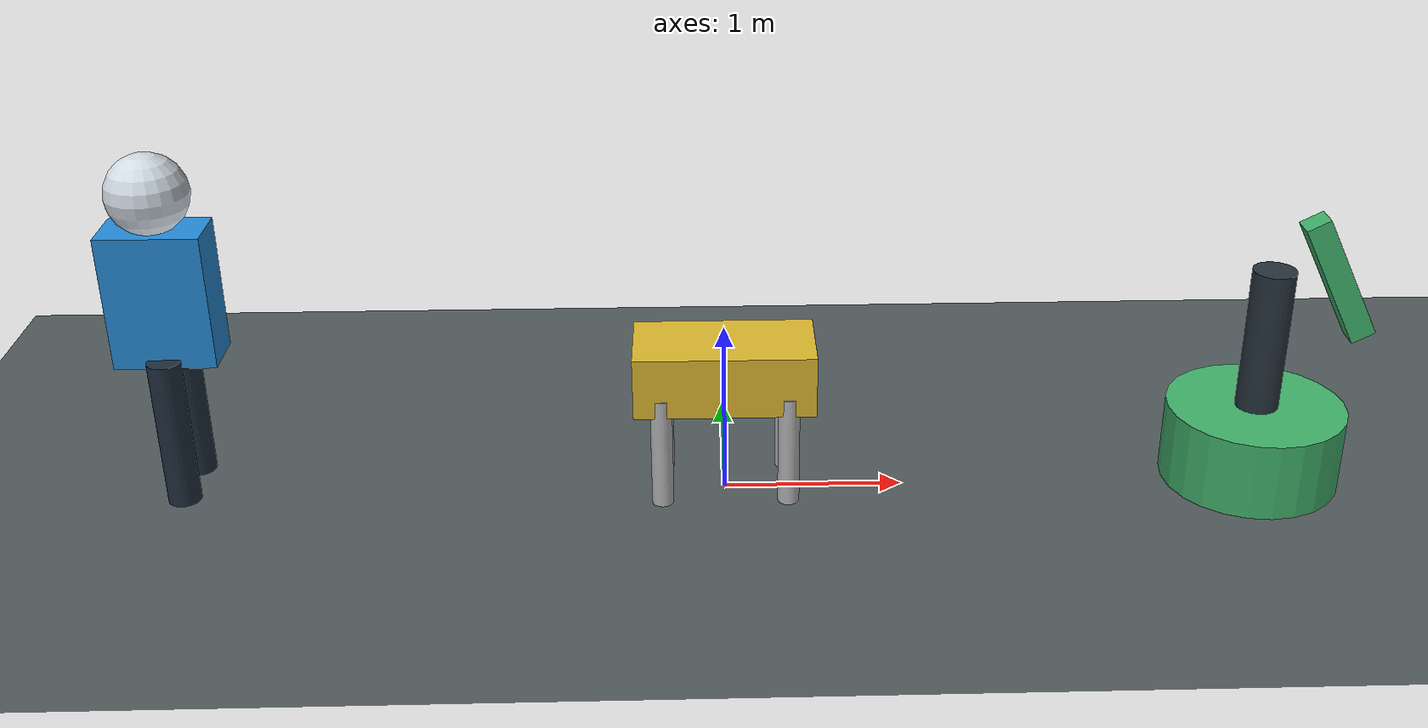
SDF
<?xml version="1.0"?>
<sdf version="1.10">
  <world name="ump_conformance">
    <plugin filename="gz-sim-physics-system" name="gz::sim::systems::Physics"/>
    <plugin filename="gz-sim-user-commands-system" name="gz::sim::systems::UserCommands"/>
    <plugin filename="gz-sim-scene-broadcaster-system" name="gz::sim::systems::SceneBroadcaster"/>

    <gravity>0 0 -9.81</gravity>
    <scene>
      <ambient>0.7 0.7 0.7 1</ambient>
      <background>0.12 0.14 0.16 1</background>
    </scene>

    <light name="sun" type="directional">
      <cast_shadows>true</cast_shadows>
      <pose>0 0 10 0 0 0</pose>
      <diffuse>0.9 0.9 0.9 1</diffuse>
      <specular>0.2 0.2 0.2 1</specular>
      <direction>-0.4 0.2 -1</direction>
    </light>

    <model name="ground">
      <static>true</static>
      <link name="ground_link">
        <collision name="collision">
          <geometry><plane><normal>0 0 1</normal><size>20 20</size></plane></geometry>
        </collision>
        <visual name="visual">
          <geometry><plane><normal>0 0 1</normal><size>20 20</size></plane></geometry>
          <material><diffuse>0.32 0.35 0.36 1</diffuse></material>
        </visual>
      </link>
    </model>

    <model name="robot_humanoid_proxy">
      <static>true</static>
      <pose>-3 0 0 0 0 0</pose>
      <link name="body">
        <visual name="torso">
          <pose>0 0 1.25 0 0 0</pose>
          <geometry><box><size>0.55 0.3 0.75</size></box></geometry>
          <material><diffuse>0.15 0.55 0.85 1</diffuse></material>
        </visual>
        <visual name="head">
          <pose>0 0 1.82 0 0 0</pose>
          <geometry><sphere><radius>0.22</radius></sphere></geometry>
          <material><diffuse>0.82 0.86 0.9 1</diffuse></material>
        </visual>
        <visual name="left_leg">
          <pose>0 0.17 0.5 0 0 0</pose>
          <geometry><cylinder><radius>0.09</radius><length>0.85</length></cylinder></geometry>
          <material><diffuse>0.12 0.18 0.24 1</diffuse></material>
        </visual>
        <visual name="right_leg">
          <pose>0 -0.17 0.5 0 0 0</pose>
          <geometry><cylinder><radius>0.09</radius><length>0.85</length></cylinder></geometry>
          <material><diffuse>0.12 0.18 0.24 1</diffuse></material>
        </visual>
      </link>
    </model>

    <model name="robot_quadruped_proxy">
      <static>true</static>
      <pose>0 0 0 0 0 0</pose>
      <link name="body">
        <visual name="chassis">
          <pose>0 0 0.75 0 0 0</pose>
          <geometry><box><size>1.0 0.5 0.35</size></box></geometry>
          <material><diffuse>0.86 0.72 0.18 1</diffuse></material>
        </visual>
        <visual name="leg_fl"><pose>0.35 0.2 0.35 0 0 0</pose><geometry><cylinder><radius>0.06</radius><length>0.65</length></cylinder></geometry></visual>
        <visual name="leg_fr"><pose>0.35 -0.2 0.35 0 0 0</pose><geometry><cylinder><radius>0.06</radius><length>0.65</length></cylinder></geometry></visual>
        <visual name="leg_rl"><pose>-0.35 0.2 0.35 0 0 0</pose><geometry><cylinder><radius>0.06</radius><length>0.65</length></cylinder></geometry></visual>
        <visual name="leg_rr"><pose>-0.35 -0.2 0.35 0 0 0</pose><geometry><cylinder><radius>0.06</radius><length>0.65</length></cylinder></geometry></visual>
      </link>
    </model>

    <model name="robot_mobile_arm_proxy">
      <static>true</static>
      <pose>3 0 0 0 0 0</pose>
      <link name="body">
        <visual name="base">
          <pose>0 0 0.25 0 0 0</pose>
          <geometry><cylinder><radius>0.5</radius><length>0.45</length></cylinder></geometry>
          <material><diffuse>0.25 0.7 0.42 1</diffuse></material>
        </visual>
        <visual name="column">
          <pose>0 0 0.85 0 0 0</pose>
          <geometry><cylinder><radius>0.12</radius><length>0.9</length></cylinder></geometry>
          <material><diffuse>0.15 0.2 0.24 1</diffuse></material>
        </visual>
        <visual name="arm">
          <pose>0.35 0 1.25 0 1.1 0</pose>
          <geometry><box><size>0.75 0.14 0.14</size></box></geometry>
          <material><diffuse>0.25 0.7 0.42 1</diffuse></material>
        </visual>
      </link>
    </model>
  </world>
</sdf>
